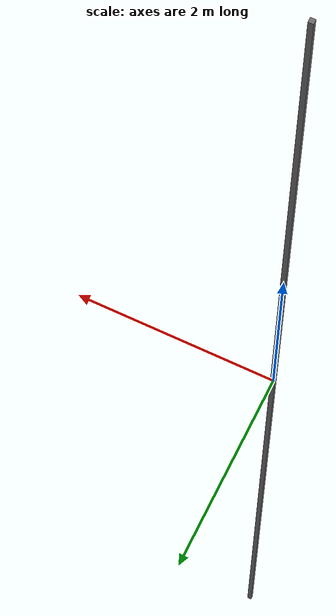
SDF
<?xml version='1.0'?>
<sdf version='1.7'>
  <model name='pole'>
    <link name='body'>
      <inertial>
        <mass>2</mass>
        <inertia>
          <ixx>0.00038054</ixx>
          <iyy>0.00038054</iyy>
          <izz>0.00064533</izz>
          <ixy>0</ixy>
          <ixz>0</ixz>
          <iyz>0</iyz>
        </inertia>
        <pose>0 0 0 0 -0 0</pose>
      </inertial>
      <self_collide>0</self_collide>
      <enable_wind>0</enable_wind>
      <kinematic>0</kinematic>
      <pose>0 0 0 0 -0 0</pose>
      <gravity>1</gravity>
      <visual name='pv1'>
        <material>
          <diffuse>0.4 0.4 0.4 1</diffuse>
          <ambient>0.4 0.4 0.4 1</ambient>
          <specular>0.4 0.4 0.4 1</specular>
          <emissive>0.4 0.4 0.4 1</emissive>
          <shader type='pixel'>
            <normal_map>__default__</normal_map>
          </shader>
          <script>
            <name>ModelPreview_3::body::pv1_MATERIAL_</name>
            <uri>__default__</uri>
          </script>
        </material>
        <geometry>
          <box>
            <size>0.045 0.044 12</size>
          </box>
        </geometry>
        <pose>0 0 0 0 -0 0</pose>
        <transparency>0</transparency>
        <cast_shadows>1</cast_shadows>
      </visual>
      <collision name='pc1'>
        <laser_retro>0</laser_retro>
        <max_contacts>10</max_contacts>
        <pose>0 0 0 0 -0 0</pose>
        <geometry>
          <box>
            <size>0.045 0.044 0.289849</size>
          </box>
        </geometry>
        <surface>
          <friction>
            <ode>
              <mu>1</mu>
              <mu2>1</mu2>
              <fdir1>0 0 0</fdir1>
              <slip1>0</slip1>
              <slip2>0</slip2>
            </ode>
            <torsional>
              <coefficient>1</coefficient>
              <patch_radius>0</patch_radius>
              <surface_radius>0</surface_radius>
              <use_patch_radius>1</use_patch_radius>
              <ode>
                <slip>0</slip>
              </ode>
            </torsional>
          </friction>
          <bounce>
            <restitution_coefficient>0</restitution_coefficient>
            <threshold>1e+06</threshold>
          </bounce>
          <contact>
            <collide_without_contact>0</collide_without_contact>
            <collide_without_contact_bitmask>1</collide_without_contact_bitmask>
            <collide_bitmask>1</collide_bitmask>
            <ode>
              <soft_cfm>0</soft_cfm>
              <soft_erp>0.2</soft_erp>
              <kp>1e+13</kp>
              <kd>1</kd>
              <max_vel>0.01</max_vel>
              <min_depth>0</min_depth>
            </ode>
            <bullet>
              <split_impulse>1</split_impulse>
              <split_impulse_penetration_threshold>-0.01</split_impulse_penetration_threshold>
              <soft_cfm>0</soft_cfm>
              <soft_erp>0.2</soft_erp>
              <kp>1e+13</kp>
              <kd>1</kd>
            </bullet>
          </contact>
        </surface>
      </collision>
    </link>
    <static>1</static>
    <allow_auto_disable>1</allow_auto_disable>
  </model>
</sdf>
